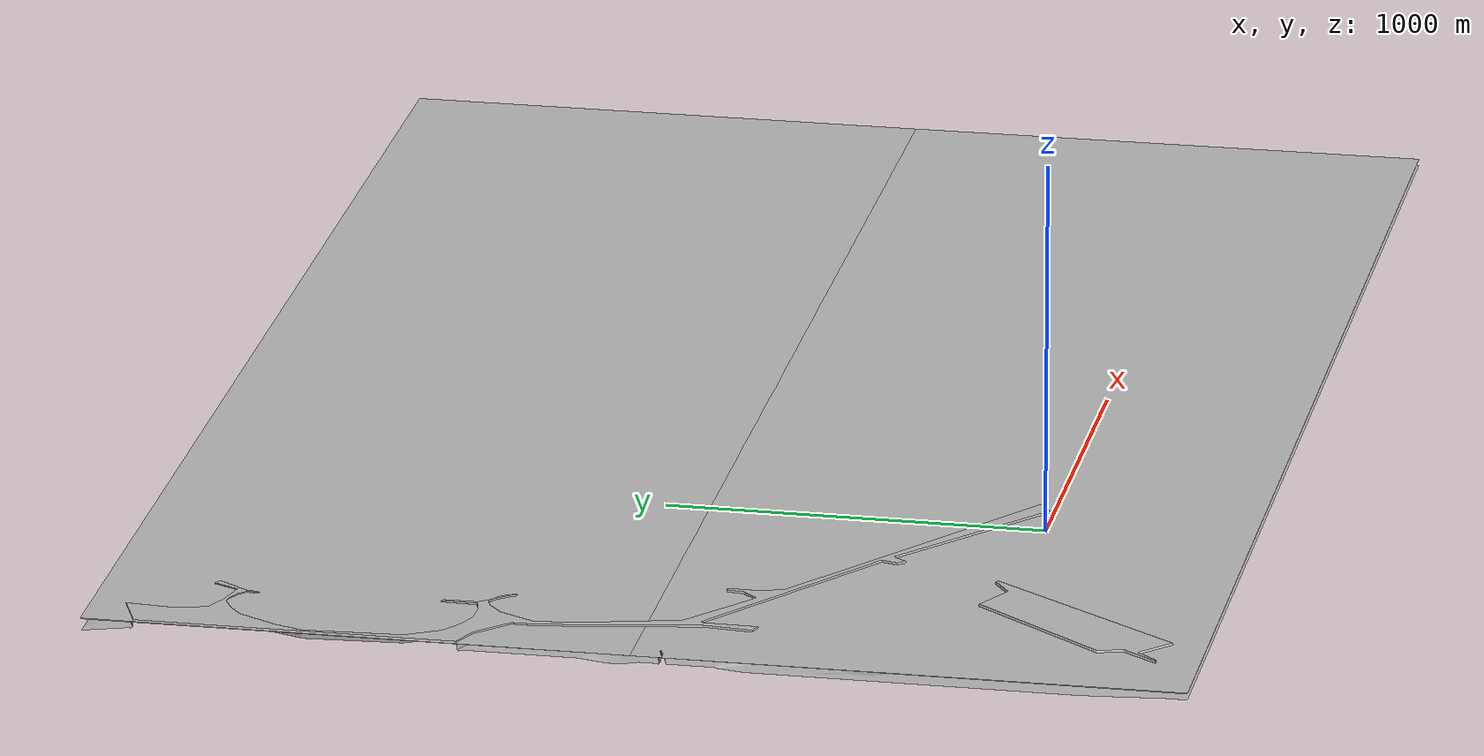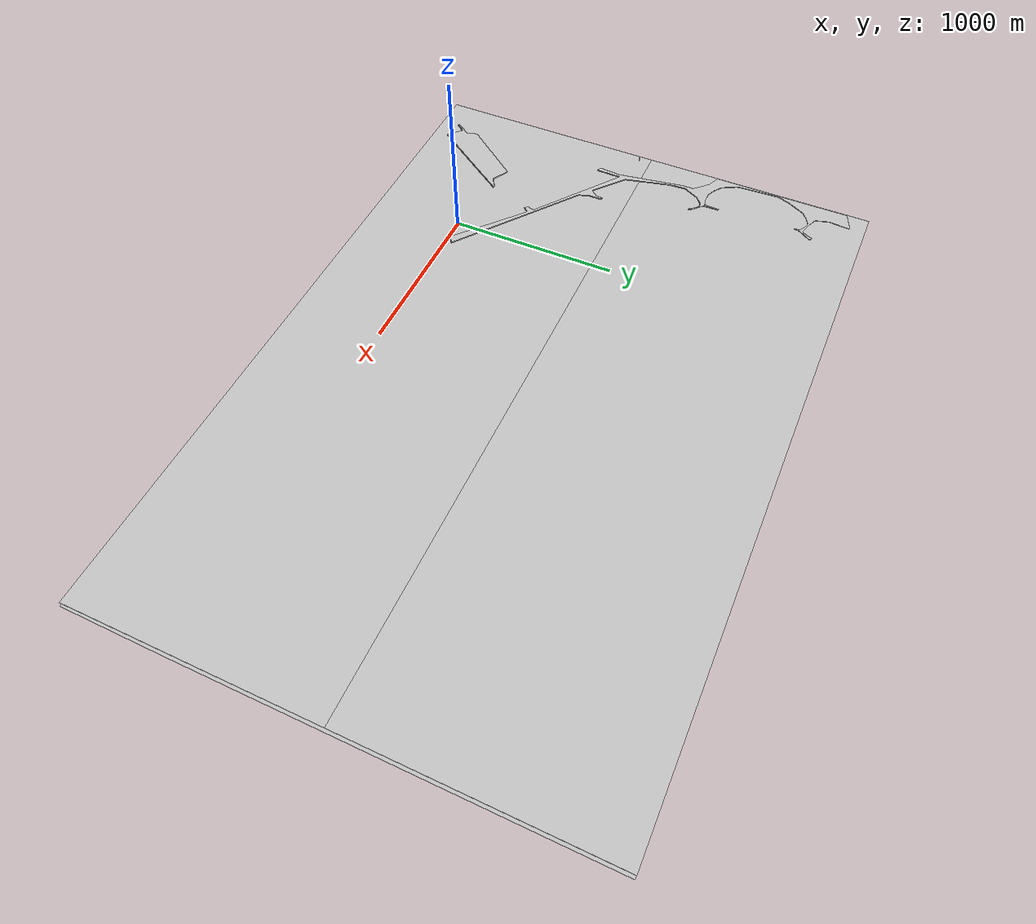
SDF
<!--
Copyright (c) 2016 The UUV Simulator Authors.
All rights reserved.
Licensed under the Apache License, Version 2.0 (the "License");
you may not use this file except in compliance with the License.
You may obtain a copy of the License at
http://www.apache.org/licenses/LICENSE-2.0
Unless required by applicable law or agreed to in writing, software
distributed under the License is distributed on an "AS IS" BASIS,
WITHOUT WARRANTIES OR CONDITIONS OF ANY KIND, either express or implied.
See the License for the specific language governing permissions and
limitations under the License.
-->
<?xml version="1.0" ?>
<sdf version="1.4">
  <world name="mangalia">
    <physics name="default_physics" default="true" type="ode">
      <max_step_size>0.01</max_step_size>
      <real_time_factor>1</real_time_factor>
      <real_time_update_rate>100</real_time_update_rate>
      <ode>
        <solver>
          <type>quick</type>
          <iters>50</iters>
          <sor>1.2</sor>
        </solver>
      </ode>
    </physics>
    <scene>
      <ambient>0.01 0.01 0.01 1.0</ambient>
      <sky>
        <clouds>
          <speed>12</speed>
        </clouds>
      </sky>
      <shadows>1</shadows>
    </scene>

    <!-- Origin of the Mangalia world in GPS coordinates -->
    <spherical_coordinates>
      <latitude_deg>43.797763</latitude_deg>
      <longitude_deg>28.598597</longitude_deg>
    </spherical_coordinates>

    <!-- Global light source -->
    <light type="directional" name="sun1">
      <pose>-50 0 -20 0 0 0</pose>
      <diffuse>1 1 1 1</diffuse>
      <specular>.1 .1 .1 1</specular>
      <direction>0.3 0.3 -1</direction>
      <cast_shadows>true</cast_shadows>
    </light>

    <!-- Global light source -->
    <light type="directional" name="sun_diffuse_1">
      <pose>0 0 100 0 0 0</pose>
      <diffuse>0.6 0.6 0.6 1</diffuse>
      <specular>0 0 0 1</specular>
      <direction>-0.3 -0.3 -1</direction>
      <cast_shadows>true</cast_shadows>
    </light>

    <light type="directional" name="sun_diffuse_2">
      <pose>-2000 50 800 0 0 0</pose>
      <diffuse>0.6 0.6 0.6 1</diffuse>
      <specular>0 0 0 1</specular>
      <direction>-0.3 -0.3 -1</direction>
      <cast_shadows>true</cast_shadows>
    </light>

    <!-- Virtual NED frame -->
    <include>
      <uri>model://ned_frame</uri>
      <pose>0 0 0 0 0 0</pose>
    </include>

    <!-- Mangalia terrain model -->
    <include>
      <uri>model://mangalia</uri>
      <pose>-572.0074568380 537.7086925743 0 0 0 0</pose>
    </include>

    <plugin name="underwater_current_plugin" filename="libuuv_underwater_current_ros_plugin.so">
      <namespace>hydrodynamics</namespace>
      <constant_current>
        <topic>current_velocity</topic>
        <velocity>
          <mean>0</mean>
          <min>0</min>
          <max>5</max>
          <mu>0.0</mu>
          <noiseAmp>0.0</noiseAmp>
        </velocity>

        <horizontal_angle>
          <mean>0</mean>
          <min>-3.141592653589793238</min>
          <max>3.141592653589793238</max>
          <mu>0.0</mu>
          <noiseAmp>0.0</noiseAmp>
        </horizontal_angle>

        <vertical_angle>
          <mean>0</mean>
          <min>-3.141592653589793238</min>
          <max>3.141592653589793238</max>
          <mu>0.0</mu>
          <noiseAmp>0.0</noiseAmp>
        </vertical_angle>
      </constant_current>
    </plugin>

    <plugin name="sc_interface" filename="libuuv_sc_ros_interface_plugin.so"/>

    <gui fullscreen='0'>
      <camera name='user_camera'>
        <pose frame=''>34.6042 32.2383 20 0 0.528384 1.41245</pose>
        <view_controller>orbit</view_controller>
        <projection_type>perspective</projection_type>
      </camera>
    </gui>
  </world>
</sdf>

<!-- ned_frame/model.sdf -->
<sdf version='1.5'>
    <model name="world_ned">

      <pose>0 0 0 0 0 0</pose>
      <static>true</static>

      <link name="world_ned">
        <gravity>0</gravity>
        <pose>0 0 0 3.14159265359 0 1.5707963267948966</pose>

        <visual name="N_visual">
          <pose>0.25 0 0 1.5707963267948966 0 1.5707963267948966</pose>
          <geometry>
            <cylinder>
              <radius>0.01</radius>
              <length>0.5</length>
            </cylinder>
          </geometry>
          <material>
            <script>
              <uri>file://media/materials/scripts/gazebo.material</uri>
              <name>Gazebo/Red</name>
            </script>
          </material>
        </visual>

        <visual name="E_visual">
          <pose>0 0.25 0 1.5707963267948966 0 0</pose>
          <geometry>
            <cylinder>
              <radius>0.01</radius>
              <length>0.5</length>
            </cylinder>
          </geometry>
          <material>
            <script>
              <uri>file://media/materials/scripts/gazebo.material</uri>
              <name>Gazebo/Green</name>
            </script>
          </material>
        </visual>

        <visual name="D_visual">
          <pose>0 0 0.25 0 0 0</pose>
          <geometry>
            <cylinder>
              <radius>0.01</radius>
              <length>0.5</length>
            </cylinder>
          </geometry>
          <material>
            <script>
              <uri>file://media/materials/scripts/gazebo.material</uri>
              <name>Gazebo/Blue</name>
            </script>
          </material>
        </visual>
      </link>
    </model>
</sdf>

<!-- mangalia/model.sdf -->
<sdf version="1.5">
  <model name="mangalia_terrain">
    <static>true</static>
    <link name="link">
      <collision name="seabed">
        <pose>0 0 -5 0 0 0</pose>
        <geometry>
          <mesh>
            <uri>model://mangalia/meshes/MangaliaTerrain.dae</uri>
            <scale>1.0 1.0 2.0</scale>
          </mesh>
        </geometry>
      </collision>

      <visual name="seabed">
        <cast_shadows>false</cast_shadows>
        <pose>0 0 -5 0 0 0</pose>
        <geometry>
          <mesh>
            <uri>model://mangalia/meshes/MangaliaTerrain.dae</uri>
            <scale>1.0 1.0 2.0</scale>
          </mesh>
        </geometry>
      </visual>
    </link>

    <link name="ocean_link">
      <visual name="ocean_surface">
        <pose>1572.54103 348.600098 0 0 0 0</pose>
        <geometry>
          <mesh>
            <uri>file://Media/models/sea_surface_1000m_x_1000m.dae</uri>
            <scale>4.124 2.853 1</scale>
          </mesh>
        </geometry>
        <material>
          <script>
            <uri>file://Media/materials/scripts/waves.material</uri>
            <name>UUVSimulator/SimpleWaves</name>
          </script>
        </material>
      </visual>

      <visual name="ocean_below">
        <pose>1572.54103 348.600098 0 3.14 0 0</pose>
        <geometry>
          <mesh>
            <uri>file://Media/models/sea_surface_1000m_x_1000m.dae</uri>
            <scale>4.124 2.853 1</scale>
          </mesh>
        </geometry>
        <material>
          <script>
            <uri>file://Media/materials/scripts/water.material</uri>
            <name>UUVSimulator/StaticWater</name>
          </script>
        </material>
      </visual>
    </link>
  </model>
</sdf>
